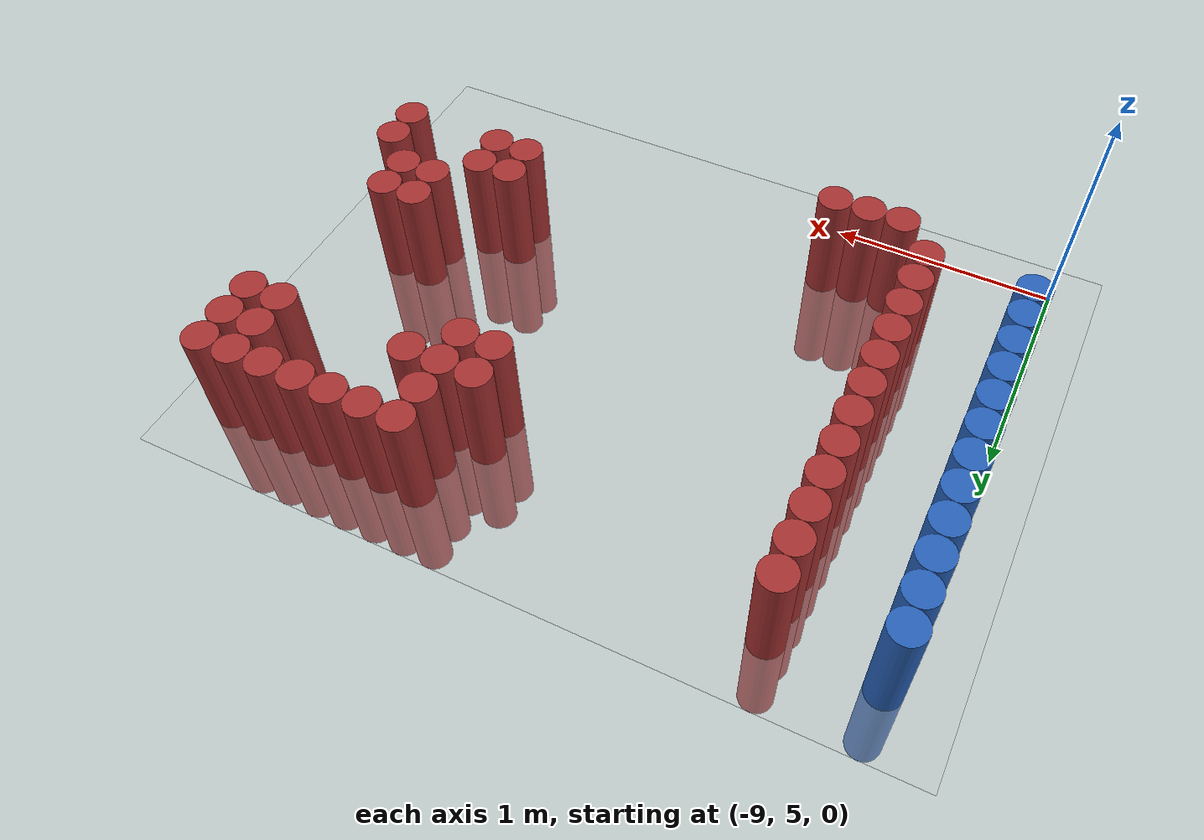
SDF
<sdf version="1.6">
 <world name="default">
  <model name="ground_plane">
   <static>1</static>
   <link name="link">
    <collision name="collision">
     <geometry><plane><normal>0 0 1</normal><size>100 100</size></plane></geometry>
     <surface><friction><ode><mu>100</mu><mu2>50</mu2></ode></friction></surface>
    </collision>
    <visual name="visual">
     <cast_shadows>0</cast_shadows>
     <geometry><plane><normal>0 0 1</normal><size>100 100</size></plane></geometry>
     <material>
      <script><uri>file://media/materials/scripts/gazebo.material</uri><name>Gazebo/Grey</name></script>
     </material>
    </visual>
   </link>
  </model>
  <model name="unit_cylinder_127">
   <static>1</static>
   <pose>-8.925000 5.475000 0.000000 0.000000 0.000000 0.000000</pose>
   <link name="link">
    <inertial>
     <mass>1</mass>
     <inertia><ixx>0.145833</ixx><ixy>0</ixy><ixz>0</ixz><iyy>0.145833</iyy><iyz>0</iyz><izz>0.125</izz></inertia>
    </inertial>
    <collision name="collision">
     <geometry><cylinder><radius>0.075000</radius><length>1</length></cylinder></geometry>
    </collision>
    <visual name="visual">
     <geometry><cylinder><radius>0.075000</radius><length>1</length></cylinder></geometry>
     <material>
      <ambient>0.152000 0.379000 0.720000 1</ambient>
      <diffuse>0.152000 0.379000 0.720000 1</diffuse>
     </material>
     <material>
      <script><name>Gazebo/Grey</name><uri>file://media/materials/scripts/gazebo.material</uri></script>
     </material>
    </visual>
   </link>
  </model>
  <model name="unit_cylinder_128">
   <static>1</static>
   <pose>-8.925000 5.625000 0.000000 0.000000 0.000000 0.000000</pose>
   <link name="link">
    <inertial>
     <mass>1</mass>
     <inertia><ixx>0.145833</ixx><ixy>0</ixy><ixz>0</ixz><iyy>0.145833</iyy><iyz>0</iyz><izz>0.125</izz></inertia>
    </inertial>
    <collision name="collision">
     <geometry><cylinder><radius>0.075000</radius><length>1</length></cylinder></geometry>
    </collision>
    <visual name="visual">
     <geometry><cylinder><radius>0.075000</radius><length>1</length></cylinder></geometry>
     <material>
      <ambient>0.152000 0.379000 0.720000 1</ambient>
      <diffuse>0.152000 0.379000 0.720000 1</diffuse>
     </material>
     <material>
      <script><name>Gazebo/Grey</name><uri>file://media/materials/scripts/gazebo.material</uri></script>
     </material>
    </visual>
   </link>
  </model>
  <model name="unit_cylinder_129">
   <static>1</static>
   <pose>-8.925000 5.775000 0.000000 0.000000 0.000000 0.000000</pose>
   <link name="link">
    <inertial>
     <mass>1</mass>
     <inertia><ixx>0.145833</ixx><ixy>0</ixy><ixz>0</ixz><iyy>0.145833</iyy><iyz>0</iyz><izz>0.125</izz></inertia>
    </inertial>
    <collision name="collision">
     <geometry><cylinder><radius>0.075000</radius><length>1</length></cylinder></geometry>
    </collision>
    <visual name="visual">
     <geometry><cylinder><radius>0.075000</radius><length>1</length></cylinder></geometry>
     <material>
      <ambient>0.152000 0.379000 0.720000 1</ambient>
      <diffuse>0.152000 0.379000 0.720000 1</diffuse>
     </material>
     <material>
      <script><name>Gazebo/Grey</name><uri>file://media/materials/scripts/gazebo.material</uri></script>
     </material>
    </visual>
   </link>
  </model>
  <model name="unit_cylinder_130">
   <static>1</static>
   <pose>-8.925000 5.925000 0.000000 0.000000 0.000000 0.000000</pose>
   <link name="link">
    <inertial>
     <mass>1</mass>
     <inertia><ixx>0.145833</ixx><ixy>0</ixy><ixz>0</ixz><iyy>0.145833</iyy><iyz>0</iyz><izz>0.125</izz></inertia>
    </inertial>
    <collision name="collision">
     <geometry><cylinder><radius>0.075000</radius><length>1</length></cylinder></geometry>
    </collision>
    <visual name="visual">
     <geometry><cylinder><radius>0.075000</radius><length>1</length></cylinder></geometry>
     <material>
      <ambient>0.152000 0.379000 0.720000 1</ambient>
      <diffuse>0.152000 0.379000 0.720000 1</diffuse>
     </material>
     <material>
      <script><name>Gazebo/Grey</name><uri>file://media/materials/scripts/gazebo.material</uri></script>
     </material>
    </visual>
   </link>
  </model>
  <model name="unit_cylinder_131">
   <static>1</static>
   <pose>-8.925000 6.075000 0.000000 0.000000 0.000000 0.000000</pose>
   <link name="link">
    <inertial>
     <mass>1</mass>
     <inertia><ixx>0.145833</ixx><ixy>0</ixy><ixz>0</ixz><iyy>0.145833</iyy><iyz>0</iyz><izz>0.125</izz></inertia>
    </inertial>
    <collision name="collision">
     <geometry><cylinder><radius>0.075000</radius><length>1</length></cylinder></geometry>
    </collision>
    <visual name="visual">
     <geometry><cylinder><radius>0.075000</radius><length>1</length></cylinder></geometry>
     <material>
      <ambient>0.152000 0.379000 0.720000 1</ambient>
      <diffuse>0.152000 0.379000 0.720000 1</diffuse>
     </material>
     <material>
      <script><name>Gazebo/Grey</name><uri>file://media/materials/scripts/gazebo.material</uri></script>
     </material>
    </visual>
   </link>
  </model>
  <model name="unit_cylinder_132">
   <static>1</static>
   <pose>-8.925000 6.225000 0.000000 0.000000 0.000000 0.000000</pose>
   <link name="link">
    <inertial>
     <mass>1</mass>
     <inertia><ixx>0.145833</ixx><ixy>0</ixy><ixz>0</ixz><iyy>0.145833</iyy><iyz>0</iyz><izz>0.125</izz></inertia>
    </inertial>
    <collision name="collision">
     <geometry><cylinder><radius>0.075000</radius><length>1</length></cylinder></geometry>
    </collision>
    <visual name="visual">
     <geometry><cylinder><radius>0.075000</radius><length>1</length></cylinder></geometry>
     <material>
      <ambient>0.152000 0.379000 0.720000 1</ambient>
      <diffuse>0.152000 0.379000 0.720000 1</diffuse>
     </material>
     <material>
      <script><name>Gazebo/Grey</name><uri>file://media/materials/scripts/gazebo.material</uri></script>
     </material>
    </visual>
   </link>
  </model>
  <model name="unit_cylinder_133">
   <static>1</static>
   <pose>-8.925000 6.375000 0.000000 0.000000 0.000000 0.000000</pose>
   <link name="link">
    <inertial>
     <mass>1</mass>
     <inertia><ixx>0.145833</ixx><ixy>0</ixy><ixz>0</ixz><iyy>0.145833</iyy><iyz>0</iyz><izz>0.125</izz></inertia>
    </inertial>
    <collision name="collision">
     <geometry><cylinder><radius>0.075000</radius><length>1</length></cylinder></geometry>
    </collision>
    <visual name="visual">
     <geometry><cylinder><radius>0.075000</radius><length>1</length></cylinder></geometry>
     <material>
      <ambient>0.152000 0.379000 0.720000 1</ambient>
      <diffuse>0.152000 0.379000 0.720000 1</diffuse>
     </material>
     <material>
      <script><name>Gazebo/Grey</name><uri>file://media/materials/scripts/gazebo.material</uri></script>
     </material>
    </visual>
   </link>
  </model>
  <model name="unit_cylinder_134">
   <static>1</static>
   <pose>-8.925000 6.525000 0.000000 0.000000 0.000000 0.000000</pose>
   <link name="link">
    <inertial>
     <mass>1</mass>
     <inertia><ixx>0.145833</ixx><ixy>0</ixy><ixz>0</ixz><iyy>0.145833</iyy><iyz>0</iyz><izz>0.125</izz></inertia>
    </inertial>
    <collision name="collision">
     <geometry><cylinder><radius>0.075000</radius><length>1</length></cylinder></geometry>
    </collision>
    <visual name="visual">
     <geometry><cylinder><radius>0.075000</radius><length>1</length></cylinder></geometry>
     <material>
      <ambient>0.152000 0.379000 0.720000 1</ambient>
      <diffuse>0.152000 0.379000 0.720000 1</diffuse>
     </material>
     <material>
      <script><name>Gazebo/Grey</name><uri>file://media/materials/scripts/gazebo.material</uri></script>
     </material>
    </visual>
   </link>
  </model>
  <model name="unit_cylinder_135">
   <static>1</static>
   <pose>-8.925000 6.675000 0.000000 0.000000 0.000000 0.000000</pose>
   <link name="link">
    <inertial>
     <mass>1</mass>
     <inertia><ixx>0.145833</ixx><ixy>0</ixy><ixz>0</ixz><iyy>0.145833</iyy><iyz>0</iyz><izz>0.125</izz></inertia>
    </inertial>
    <collision name="collision">
     <geometry><cylinder><radius>0.075000</radius><length>1</length></cylinder></geometry>
    </collision>
    <visual name="visual">
     <geometry><cylinder><radius>0.075000</radius><length>1</length></cylinder></geometry>
     <material>
      <ambient>0.152000 0.379000 0.720000 1</ambient>
      <diffuse>0.152000 0.379000 0.720000 1</diffuse>
     </material>
     <material>
      <script><name>Gazebo/Grey</name><uri>file://media/materials/scripts/gazebo.material</uri></script>
     </material>
    </visual>
   </link>
  </model>
  <model name="unit_cylinder_136">
   <static>1</static>
   <pose>-8.925000 6.825000 0.000000 0.000000 0.000000 0.000000</pose>
   <link name="link">
    <inertial>
     <mass>1</mass>
     <inertia><ixx>0.145833</ixx><ixy>0</ixy><ixz>0</ixz><iyy>0.145833</iyy><iyz>0</iyz><izz>0.125</izz></inertia>
    </inertial>
    <collision name="collision">
     <geometry><cylinder><radius>0.075000</radius><length>1</length></cylinder></geometry>
    </collision>
    <visual name="visual">
     <geometry><cylinder><radius>0.075000</radius><length>1</length></cylinder></geometry>
     <material>
      <ambient>0.152000 0.379000 0.720000 1</ambient>
      <diffuse>0.152000 0.379000 0.720000 1</diffuse>
     </material>
     <material>
      <script><name>Gazebo/Grey</name><uri>file://media/materials/scripts/gazebo.material</uri></script>
     </material>
    </visual>
   </link>
  </model>
  <model name="unit_cylinder_137">
   <static>1</static>
   <pose>-8.925000 6.975000 0.000000 0.000000 0.000000 0.000000</pose>
   <link name="link">
    <inertial>
     <mass>1</mass>
     <inertia><ixx>0.145833</ixx><ixy>0</ixy><ixz>0</ixz><iyy>0.145833</iyy><iyz>0</iyz><izz>0.125</izz></inertia>
    </inertial>
    <collision name="collision">
     <geometry><cylinder><radius>0.075000</radius><length>1</length></cylinder></geometry>
    </collision>
    <visual name="visual">
     <geometry><cylinder><radius>0.075000</radius><length>1</length></cylinder></geometry>
     <material>
      <ambient>0.152000 0.379000 0.720000 1</ambient>
      <diffuse>0.152000 0.379000 0.720000 1</diffuse>
     </material>
     <material>
      <script><name>Gazebo/Grey</name><uri>file://media/materials/scripts/gazebo.material</uri></script>
     </material>
    </visual>
   </link>
  </model>
  <model name="unit_cylinder_138">
   <static>1</static>
   <pose>-8.925000 7.125000 0.000000 0.000000 0.000000 0.000000</pose>
   <link name="link">
    <inertial>
     <mass>1</mass>
     <inertia><ixx>0.145833</ixx><ixy>0</ixy><ixz>0</ixz><iyy>0.145833</iyy><iyz>0</iyz><izz>0.125</izz></inertia>
    </inertial>
    <collision name="collision">
     <geometry><cylinder><radius>0.075000</radius><length>1</length></cylinder></geometry>
    </collision>
    <visual name="visual">
     <geometry><cylinder><radius>0.075000</radius><length>1</length></cylinder></geometry>
     <material>
      <ambient>0.152000 0.379000 0.720000 1</ambient>
      <diffuse>0.152000 0.379000 0.720000 1</diffuse>
     </material>
     <material>
      <script><name>Gazebo/Grey</name><uri>file://media/materials/scripts/gazebo.material</uri></script>
     </material>
    </visual>
   </link>
  </model>
  <model name="unit_cylinder_161">
   <static>1</static>
   <pose>-8.475000 5.475000 0.000000 0.000000 0.000000 0.000000</pose>
   <link name="link">
    <inertial>
     <mass>1</mass>
     <inertia><ixx>0.145833</ixx><ixy>0</ixy><ixz>0</ixz><iyy>0.145833</iyy><iyz>0</iyz><izz>0.125</izz></inertia>
    </inertial>
    <collision name="collision">
     <geometry><cylinder><radius>0.075000</radius><length>1</length></cylinder></geometry>
    </collision>
    <visual name="visual">
     <geometry><cylinder><radius>0.075000</radius><length>1</length></cylinder></geometry>
     <material>
      <ambient>0.648000 0.192000 0.192000 1</ambient>
      <diffuse>0.648000 0.192000 0.192000 1</diffuse>
     </material>
     <material>
      <script><name>Gazebo/Grey</name><uri>file://media/materials/scripts/gazebo.material</uri></script>
     </material>
    </visual>
   </link>
  </model>
  <model name="unit_cylinder_162">
   <static>1</static>
   <pose>-8.475000 5.625000 0.000000 0.000000 0.000000 0.000000</pose>
   <link name="link">
    <inertial>
     <mass>1</mass>
     <inertia><ixx>0.145833</ixx><ixy>0</ixy><ixz>0</ixz><iyy>0.145833</iyy><iyz>0</iyz><izz>0.125</izz></inertia>
    </inertial>
    <collision name="collision">
     <geometry><cylinder><radius>0.075000</radius><length>1</length></cylinder></geometry>
    </collision>
    <visual name="visual">
     <geometry><cylinder><radius>0.075000</radius><length>1</length></cylinder></geometry>
     <material>
      <ambient>0.648000 0.192000 0.192000 1</ambient>
      <diffuse>0.648000 0.192000 0.192000 1</diffuse>
     </material>
     <material>
      <script><name>Gazebo/Grey</name><uri>file://media/materials/scripts/gazebo.material</uri></script>
     </material>
    </visual>
   </link>
  </model>
  <model name="unit_cylinder_163">
   <static>1</static>
   <pose>-8.475000 5.775000 0.000000 0.000000 0.000000 0.000000</pose>
   <link name="link">
    <inertial>
     <mass>1</mass>
     <inertia><ixx>0.145833</ixx><ixy>0</ixy><ixz>0</ixz><iyy>0.145833</iyy><iyz>0</iyz><izz>0.125</izz></inertia>
    </inertial>
    <collision name="collision">
     <geometry><cylinder><radius>0.075000</radius><length>1</length></cylinder></geometry>
    </collision>
    <visual name="visual">
     <geometry><cylinder><radius>0.075000</radius><length>1</length></cylinder></geometry>
     <material>
      <ambient>0.648000 0.192000 0.192000 1</ambient>
      <diffuse>0.648000 0.192000 0.192000 1</diffuse>
     </material>
     <material>
      <script><name>Gazebo/Grey</name><uri>file://media/materials/scripts/gazebo.material</uri></script>
     </material>
    </visual>
   </link>
  </model>
  <model name="unit_cylinder_164">
   <static>1</static>
   <pose>-8.475000 5.925000 0.000000 0.000000 0.000000 0.000000</pose>
   <link name="link">
    <inertial>
     <mass>1</mass>
     <inertia><ixx>0.145833</ixx><ixy>0</ixy><ixz>0</ixz><iyy>0.145833</iyy><iyz>0</iyz><izz>0.125</izz></inertia>
    </inertial>
    <collision name="collision">
     <geometry><cylinder><radius>0.075000</radius><length>1</length></cylinder></geometry>
    </collision>
    <visual name="visual">
     <geometry><cylinder><radius>0.075000</radius><length>1</length></cylinder></geometry>
     <material>
      <ambient>0.648000 0.192000 0.192000 1</ambient>
      <diffuse>0.648000 0.192000 0.192000 1</diffuse>
     </material>
     <material>
      <script><name>Gazebo/Grey</name><uri>file://media/materials/scripts/gazebo.material</uri></script>
     </material>
    </visual>
   </link>
  </model>
  <model name="unit_cylinder_165">
   <static>1</static>
   <pose>-8.475000 6.075000 0.000000 0.000000 0.000000 0.000000</pose>
   <link name="link">
    <inertial>
     <mass>1</mass>
     <inertia><ixx>0.145833</ixx><ixy>0</ixy><ixz>0</ixz><iyy>0.145833</iyy><iyz>0</iyz><izz>0.125</izz></inertia>
    </inertial>
    <collision name="collision">
     <geometry><cylinder><radius>0.075000</radius><length>1</length></cylinder></geometry>
    </collision>
    <visual name="visual">
     <geometry><cylinder><radius>0.075000</radius><length>1</length></cylinder></geometry>
     <material>
      <ambient>0.648000 0.192000 0.192000 1</ambient>
      <diffuse>0.648000 0.192000 0.192000 1</diffuse>
     </material>
     <material>
      <script><name>Gazebo/Grey</name><uri>file://media/materials/scripts/gazebo.material</uri></script>
     </material>
    </visual>
   </link>
  </model>
  <model name="unit_cylinder_166">
   <static>1</static>
   <pose>-8.475000 6.225000 0.000000 0.000000 0.000000 0.000000</pose>
   <link name="link">
    <inertial>
     <mass>1</mass>
     <inertia><ixx>0.145833</ixx><ixy>0</ixy><ixz>0</ixz><iyy>0.145833</iyy><iyz>0</iyz><izz>0.125</izz></inertia>
    </inertial>
    <collision name="collision">
     <geometry><cylinder><radius>0.075000</radius><length>1</length></cylinder></geometry>
    </collision>
    <visual name="visual">
     <geometry><cylinder><radius>0.075000</radius><length>1</length></cylinder></geometry>
     <material>
      <ambient>0.648000 0.192000 0.192000 1</ambient>
      <diffuse>0.648000 0.192000 0.192000 1</diffuse>
     </material>
     <material>
      <script><name>Gazebo/Grey</name><uri>file://media/materials/scripts/gazebo.material</uri></script>
     </material>
    </visual>
   </link>
  </model>
  <model name="unit_cylinder_167">
   <static>1</static>
   <pose>-8.475000 6.375000 0.000000 0.000000 0.000000 0.000000</pose>
   <link name="link">
    <inertial>
     <mass>1</mass>
     <inertia><ixx>0.145833</ixx><ixy>0</ixy><ixz>0</ixz><iyy>0.145833</iyy><iyz>0</iyz><izz>0.125</izz></inertia>
    </inertial>
    <collision name="collision">
     <geometry><cylinder><radius>0.075000</radius><length>1</length></cylinder></geometry>
    </collision>
    <visual name="visual">
     <geometry><cylinder><radius>0.075000</radius><length>1</length></cylinder></geometry>
     <material>
      <ambient>0.648000 0.192000 0.192000 1</ambient>
      <diffuse>0.648000 0.192000 0.192000 1</diffuse>
     </material>
     <material>
      <script><name>Gazebo/Grey</name><uri>file://media/materials/scripts/gazebo.material</uri></script>
     </material>
    </visual>
   </link>
  </model>
  <model name="unit_cylinder_168">
   <static>1</static>
   <pose>-8.475000 6.525000 0.000000 0.000000 0.000000 0.000000</pose>
   <link name="link">
    <inertial>
     <mass>1</mass>
     <inertia><ixx>0.145833</ixx><ixy>0</ixy><ixz>0</ixz><iyy>0.145833</iyy><iyz>0</iyz><izz>0.125</izz></inertia>
    </inertial>
    <collision name="collision">
     <geometry><cylinder><radius>0.075000</radius><length>1</length></cylinder></geometry>
    </collision>
    <visual name="visual">
     <geometry><cylinder><radius>0.075000</radius><length>1</length></cylinder></geometry>
     <material>
      <ambient>0.648000 0.192000 0.192000 1</ambient>
      <diffuse>0.648000 0.192000 0.192000 1</diffuse>
     </material>
     <material>
      <script><name>Gazebo/Grey</name><uri>file://media/materials/scripts/gazebo.material</uri></script>
     </material>
    </visual>
   </link>
  </model>
  <model name="unit_cylinder_169">
   <static>1</static>
   <pose>-8.475000 6.675000 0.000000 0.000000 0.000000 0.000000</pose>
   <link name="link">
    <inertial>
     <mass>1</mass>
     <inertia><ixx>0.145833</ixx><ixy>0</ixy><ixz>0</ixz><iyy>0.145833</iyy><iyz>0</iyz><izz>0.125</izz></inertia>
    </inertial>
    <collision name="collision">
     <geometry><cylinder><radius>0.075000</radius><length>1</length></cylinder></geometry>
    </collision>
    <visual name="visual">
     <geometry><cylinder><radius>0.075000</radius><length>1</length></cylinder></geometry>
     <material>
      <ambient>0.648000 0.192000 0.192000 1</ambient>
      <diffuse>0.648000 0.192000 0.192000 1</diffuse>
     </material>
     <material>
      <script><name>Gazebo/Grey</name><uri>file://media/materials/scripts/gazebo.material</uri></script>
     </material>
    </visual>
   </link>
  </model>
  <model name="unit_cylinder_170">
   <static>1</static>
   <pose>-8.475000 6.825000 0.000000 0.000000 0.000000 0.000000</pose>
   <link name="link">
    <inertial>
     <mass>1</mass>
     <inertia><ixx>0.145833</ixx><ixy>0</ixy><ixz>0</ixz><iyy>0.145833</iyy><iyz>0</iyz><izz>0.125</izz></inertia>
    </inertial>
    <collision name="collision">
     <geometry><cylinder><radius>0.075000</radius><length>1</length></cylinder></geometry>
    </collision>
    <visual name="visual">
     <geometry><cylinder><radius>0.075000</radius><length>1</length></cylinder></geometry>
     <material>
      <ambient>0.648000 0.192000 0.192000 1</ambient>
      <diffuse>0.648000 0.192000 0.192000 1</diffuse>
     </material>
     <material>
      <script><name>Gazebo/Grey</name><uri>file://media/materials/scripts/gazebo.material</uri></script>
     </material>
    </visual>
   </link>
  </model>
  <model name="unit_cylinder_171">
   <static>1</static>
   <pose>-8.475000 6.975000 0.000000 0.000000 0.000000 0.000000</pose>
   <link name="link">
    <inertial>
     <mass>1</mass>
     <inertia><ixx>0.145833</ixx><ixy>0</ixy><ixz>0</ixz><iyy>0.145833</iyy><iyz>0</iyz><izz>0.125</izz></inertia>
    </inertial>
    <collision name="collision">
     <geometry><cylinder><radius>0.075000</radius><length>1</length></cylinder></geometry>
    </collision>
    <visual name="visual">
     <geometry><cylinder><radius>0.075000</radius><length>1</length></cylinder></geometry>
     <material>
      <ambient>0.648000 0.192000 0.192000 1</ambient>
      <diffuse>0.648000 0.192000 0.192000 1</diffuse>
     </material>
     <material>
      <script><name>Gazebo/Grey</name><uri>file://media/materials/scripts/gazebo.material</uri></script>
     </material>
    </visual>
   </link>
  </model>
  <model name="unit_cylinder_172">
   <static>1</static>
   <pose>-8.475000 7.125000 0.000000 0.000000 0.000000 0.000000</pose>
   <link name="link">
    <inertial>
     <mass>1</mass>
     <inertia><ixx>0.145833</ixx><ixy>0</ixy><ixz>0</ixz><iyy>0.145833</iyy><iyz>0</iyz><izz>0.125</izz></inertia>
    </inertial>
    <collision name="collision">
     <geometry><cylinder><radius>0.075000</radius><length>1</length></cylinder></geometry>
    </collision>
    <visual name="visual">
     <geometry><cylinder><radius>0.075000</radius><length>1</length></cylinder></geometry>
     <material>
      <ambient>0.648000 0.192000 0.192000 1</ambient>
      <diffuse>0.648000 0.192000 0.192000 1</diffuse>
     </material>
     <material>
      <script><name>Gazebo/Grey</name><uri>file://media/materials/scripts/gazebo.material</uri></script>
     </material>
    </visual>
   </link>
  </model>
  <model name="unit_cylinder_182">
   <static>1</static>
   <pose>-8.325000 5.325000 0.000000 0.000000 0.000000 0.000000</pose>
   <link name="link">
    <inertial>
     <mass>1</mass>
     <inertia><ixx>0.145833</ixx><ixy>0</ixy><ixz>0</ixz><iyy>0.145833</iyy><iyz>0</iyz><izz>0.125</izz></inertia>
    </inertial>
    <collision name="collision">
     <geometry><cylinder><radius>0.075000</radius><length>1</length></cylinder></geometry>
    </collision>
    <visual name="visual">
     <geometry><cylinder><radius>0.075000</radius><length>1</length></cylinder></geometry>
     <material>
      <ambient>0.648000 0.192000 0.192000 1</ambient>
      <diffuse>0.648000 0.192000 0.192000 1</diffuse>
     </material>
     <material>
      <script><name>Gazebo/Grey</name><uri>file://media/materials/scripts/gazebo.material</uri></script>
     </material>
    </visual>
   </link>
  </model>
  <model name="unit_cylinder_188">
   <static>1</static>
   <pose>-8.175000 5.325000 0.000000 0.000000 0.000000 0.000000</pose>
   <link name="link">
    <inertial>
     <mass>1</mass>
     <inertia><ixx>0.145833</ixx><ixy>0</ixy><ixz>0</ixz><iyy>0.145833</iyy><iyz>0</iyz><izz>0.125</izz></inertia>
    </inertial>
    <collision name="collision">
     <geometry><cylinder><radius>0.075000</radius><length>1</length></cylinder></geometry>
    </collision>
    <visual name="visual">
     <geometry><cylinder><radius>0.075000</radius><length>1</length></cylinder></geometry>
     <material>
      <ambient>0.648000 0.192000 0.192000 1</ambient>
      <diffuse>0.648000 0.192000 0.192000 1</diffuse>
     </material>
     <material>
      <script><name>Gazebo/Grey</name><uri>file://media/materials/scripts/gazebo.material</uri></script>
     </material>
    </visual>
   </link>
  </model>
  <model name="unit_cylinder_193">
   <static>1</static>
   <pose>-8.025000 5.325000 0.000000 0.000000 0.000000 0.000000</pose>
   <link name="link">
    <inertial>
     <mass>1</mass>
     <inertia><ixx>0.145833</ixx><ixy>0</ixy><ixz>0</ixz><iyy>0.145833</iyy><iyz>0</iyz><izz>0.125</izz></inertia>
    </inertial>
    <collision name="collision">
     <geometry><cylinder><radius>0.075000</radius><length>1</length></cylinder></geometry>
    </collision>
    <visual name="visual">
     <geometry><cylinder><radius>0.075000</radius><length>1</length></cylinder></geometry>
     <material>
      <ambient>0.648000 0.192000 0.192000 1</ambient>
      <diffuse>0.648000 0.192000 0.192000 1</diffuse>
     </material>
     <material>
      <script><name>Gazebo/Grey</name><uri>file://media/materials/scripts/gazebo.material</uri></script>
     </material>
    </visual>
   </link>
  </model>
  <model name="unit_cylinder_207">
   <static>1</static>
   <pose>-7.125000 6.675000 0.000000 0.000000 0.000000 0.000000</pose>
   <link name="link">
    <inertial>
     <mass>1</mass>
     <inertia><ixx>0.145833</ixx><ixy>0</ixy><ixz>0</ixz><iyy>0.145833</iyy><iyz>0</iyz><izz>0.125</izz></inertia>
    </inertial>
    <collision name="collision">
     <geometry><cylinder><radius>0.075000</radius><length>1</length></cylinder></geometry>
    </collision>
    <visual name="visual">
     <geometry><cylinder><radius>0.075000</radius><length>1</length></cylinder></geometry>
     <material>
      <ambient>0.648000 0.192000 0.192000 1</ambient>
      <diffuse>0.648000 0.192000 0.192000 1</diffuse>
     </material>
     <material>
      <script><name>Gazebo/Grey</name><uri>file://media/materials/scripts/gazebo.material</uri></script>
     </material>
    </visual>
   </link>
  </model>
  <model name="unit_cylinder_208">
   <static>1</static>
   <pose>-7.125000 6.825000 0.000000 0.000000 0.000000 0.000000</pose>
   <link name="link">
    <inertial>
     <mass>1</mass>
     <inertia><ixx>0.145833</ixx><ixy>0</ixy><ixz>0</ixz><iyy>0.145833</iyy><iyz>0</iyz><izz>0.125</izz></inertia>
    </inertial>
    <collision name="collision">
     <geometry><cylinder><radius>0.075000</radius><length>1</length></cylinder></geometry>
    </collision>
    <visual name="visual">
     <geometry><cylinder><radius>0.075000</radius><length>1</length></cylinder></geometry>
     <material>
      <ambient>0.648000 0.192000 0.192000 1</ambient>
      <diffuse>0.648000 0.192000 0.192000 1</diffuse>
     </material>
     <material>
      <script><name>Gazebo/Grey</name><uri>file://media/materials/scripts/gazebo.material</uri></script>
     </material>
    </visual>
   </link>
  </model>
  <model name="unit_cylinder_209">
   <static>1</static>
   <pose>-6.975000 6.675000 0.000000 0.000000 0.000000 0.000000</pose>
   <link name="link">
    <inertial>
     <mass>1</mass>
     <inertia><ixx>0.145833</ixx><ixy>0</ixy><ixz>0</ixz><iyy>0.145833</iyy><iyz>0</iyz><izz>0.125</izz></inertia>
    </inertial>
    <collision name="collision">
     <geometry><cylinder><radius>0.075000</radius><length>1</length></cylinder></geometry>
    </collision>
    <visual name="visual">
     <geometry><cylinder><radius>0.075000</radius><length>1</length></cylinder></geometry>
     <material>
      <ambient>0.648000 0.192000 0.192000 1</ambient>
      <diffuse>0.648000 0.192000 0.192000 1</diffuse>
     </material>
     <material>
      <script><name>Gazebo/Grey</name><uri>file://media/materials/scripts/gazebo.material</uri></script>
     </material>
    </visual>
   </link>
  </model>
  <model name="unit_cylinder_210">
   <static>1</static>
   <pose>-6.975000 6.825000 0.000000 0.000000 0.000000 0.000000</pose>
   <link name="link">
    <inertial>
     <mass>1</mass>
     <inertia><ixx>0.145833</ixx><ixy>0</ixy><ixz>0</ixz><iyy>0.145833</iyy><iyz>0</iyz><izz>0.125</izz></inertia>
    </inertial>
    <collision name="collision">
     <geometry><cylinder><radius>0.075000</radius><length>1</length></cylinder></geometry>
    </collision>
    <visual name="visual">
     <geometry><cylinder><radius>0.075000</radius><length>1</length></cylinder></geometry>
     <material>
      <ambient>0.648000 0.192000 0.192000 1</ambient>
      <diffuse>0.648000 0.192000 0.192000 1</diffuse>
     </material>
     <material>
      <script><name>Gazebo/Grey</name><uri>file://media/materials/scripts/gazebo.material</uri></script>
     </material>
    </visual>
   </link>
  </model>
  <model name="unit_cylinder_211">
   <static>1</static>
   <pose>-6.975000 6.975000 0.000000 0.000000 0.000000 0.000000</pose>
   <link name="link">
    <inertial>
     <mass>1</mass>
     <inertia><ixx>0.145833</ixx><ixy>0</ixy><ixz>0</ixz><iyy>0.145833</iyy><iyz>0</iyz><izz>0.125</izz></inertia>
    </inertial>
    <collision name="collision">
     <geometry><cylinder><radius>0.075000</radius><length>1</length></cylinder></geometry>
    </collision>
    <visual name="visual">
     <geometry><cylinder><radius>0.075000</radius><length>1</length></cylinder></geometry>
     <material>
      <ambient>0.648000 0.192000 0.192000 1</ambient>
      <diffuse>0.648000 0.192000 0.192000 1</diffuse>
     </material>
     <material>
      <script><name>Gazebo/Grey</name><uri>file://media/materials/scripts/gazebo.material</uri></script>
     </material>
    </visual>
   </link>
  </model>
  <model name="unit_cylinder_212">
   <static>1</static>
   <pose>-6.975000 7.125000 0.000000 0.000000 0.000000 0.000000</pose>
   <link name="link">
    <inertial>
     <mass>1</mass>
     <inertia><ixx>0.145833</ixx><ixy>0</ixy><ixz>0</ixz><iyy>0.145833</iyy><iyz>0</iyz><izz>0.125</izz></inertia>
    </inertial>
    <collision name="collision">
     <geometry><cylinder><radius>0.075000</radius><length>1</length></cylinder></geometry>
    </collision>
    <visual name="visual">
     <geometry><cylinder><radius>0.075000</radius><length>1</length></cylinder></geometry>
     <material>
      <ambient>0.648000 0.192000 0.192000 1</ambient>
      <diffuse>0.648000 0.192000 0.192000 1</diffuse>
     </material>
     <material>
      <script><name>Gazebo/Grey</name><uri>file://media/materials/scripts/gazebo.material</uri></script>
     </material>
    </visual>
   </link>
  </model>
  <model name="unit_cylinder_213">
   <static>1</static>
   <pose>-6.825000 6.825000 0.000000 0.000000 0.000000 0.000000</pose>
   <link name="link">
    <inertial>
     <mass>1</mass>
     <inertia><ixx>0.145833</ixx><ixy>0</ixy><ixz>0</ixz><iyy>0.145833</iyy><iyz>0</iyz><izz>0.125</izz></inertia>
    </inertial>
    <collision name="collision">
     <geometry><cylinder><radius>0.075000</radius><length>1</length></cylinder></geometry>
    </collision>
    <visual name="visual">
     <geometry><cylinder><radius>0.075000</radius><length>1</length></cylinder></geometry>
     <material>
      <ambient>0.648000 0.192000 0.192000 1</ambient>
      <diffuse>0.648000 0.192000 0.192000 1</diffuse>
     </material>
     <material>
      <script><name>Gazebo/Grey</name><uri>file://media/materials/scripts/gazebo.material</uri></script>
     </material>
    </visual>
   </link>
  </model>
  <model name="unit_cylinder_214">
   <static>1</static>
   <pose>-6.825000 7.125000 0.000000 0.000000 0.000000 0.000000</pose>
   <link name="link">
    <inertial>
     <mass>1</mass>
     <inertia><ixx>0.145833</ixx><ixy>0</ixy><ixz>0</ixz><iyy>0.145833</iyy><iyz>0</iyz><izz>0.125</izz></inertia>
    </inertial>
    <collision name="collision">
     <geometry><cylinder><radius>0.075000</radius><length>1</length></cylinder></geometry>
    </collision>
    <visual name="visual">
     <geometry><cylinder><radius>0.075000</radius><length>1</length></cylinder></geometry>
     <material>
      <ambient>0.648000 0.192000 0.192000 1</ambient>
      <diffuse>0.648000 0.192000 0.192000 1</diffuse>
     </material>
     <material>
      <script><name>Gazebo/Grey</name><uri>file://media/materials/scripts/gazebo.material</uri></script>
     </material>
    </visual>
   </link>
  </model>
  <model name="unit_cylinder_216">
   <static>1</static>
   <pose>-6.675000 5.625000 0.000000 0.000000 0.000000 0.000000</pose>
   <link name="link">
    <inertial>
     <mass>1</mass>
     <inertia><ixx>0.145833</ixx><ixy>0</ixy><ixz>0</ixz><iyy>0.145833</iyy><iyz>0</iyz><izz>0.125</izz></inertia>
    </inertial>
    <collision name="collision">
     <geometry><cylinder><radius>0.075000</radius><length>1</length></cylinder></geometry>
    </collision>
    <visual name="visual">
     <geometry><cylinder><radius>0.075000</radius><length>1</length></cylinder></geometry>
     <material>
      <ambient>0.648000 0.192000 0.192000 1</ambient>
      <diffuse>0.648000 0.192000 0.192000 1</diffuse>
     </material>
     <material>
      <script><name>Gazebo/Grey</name><uri>file://media/materials/scripts/gazebo.material</uri></script>
     </material>
    </visual>
   </link>
  </model>
  <model name="unit_cylinder_217">
   <static>1</static>
   <pose>-6.675000 5.775000 0.000000 0.000000 0.000000 0.000000</pose>
   <link name="link">
    <inertial>
     <mass>1</mass>
     <inertia><ixx>0.145833</ixx><ixy>0</ixy><ixz>0</ixz><iyy>0.145833</iyy><iyz>0</iyz><izz>0.125</izz></inertia>
    </inertial>
    <collision name="collision">
     <geometry><cylinder><radius>0.075000</radius><length>1</length></cylinder></geometry>
    </collision>
    <visual name="visual">
     <geometry><cylinder><radius>0.075000</radius><length>1</length></cylinder></geometry>
     <material>
      <ambient>0.648000 0.192000 0.192000 1</ambient>
      <diffuse>0.648000 0.192000 0.192000 1</diffuse>
     </material>
     <material>
      <script><name>Gazebo/Grey</name><uri>file://media/materials/scripts/gazebo.material</uri></script>
     </material>
    </visual>
   </link>
  </model>
  <model name="unit_cylinder_218">
   <static>1</static>
   <pose>-6.675000 7.125000 0.000000 0.000000 0.000000 0.000000</pose>
   <link name="link">
    <inertial>
     <mass>1</mass>
     <inertia><ixx>0.145833</ixx><ixy>0</ixy><ixz>0</ixz><iyy>0.145833</iyy><iyz>0</iyz><izz>0.125</izz></inertia>
    </inertial>
    <collision name="collision">
     <geometry><cylinder><radius>0.075000</radius><length>1</length></cylinder></geometry>
    </collision>
    <visual name="visual">
     <geometry><cylinder><radius>0.075000</radius><length>1</length></cylinder></geometry>
     <material>
      <ambient>0.648000 0.192000 0.192000 1</ambient>
      <diffuse>0.648000 0.192000 0.192000 1</diffuse>
     </material>
     <material>
      <script><name>Gazebo/Grey</name><uri>file://media/materials/scripts/gazebo.material</uri></script>
     </material>
    </visual>
   </link>
  </model>
  <model name="unit_cylinder_220">
   <static>1</static>
   <pose>-6.525000 5.625000 0.000000 0.000000 0.000000 0.000000</pose>
   <link name="link">
    <inertial>
     <mass>1</mass>
     <inertia><ixx>0.145833</ixx><ixy>0</ixy><ixz>0</ixz><iyy>0.145833</iyy><iyz>0</iyz><izz>0.125</izz></inertia>
    </inertial>
    <collision name="collision">
     <geometry><cylinder><radius>0.075000</radius><length>1</length></cylinder></geometry>
    </collision>
    <visual name="visual">
     <geometry><cylinder><radius>0.075000</radius><length>1</length></cylinder></geometry>
     <material>
      <ambient>0.648000 0.192000 0.192000 1</ambient>
      <diffuse>0.648000 0.192000 0.192000 1</diffuse>
     </material>
     <material>
      <script><name>Gazebo/Grey</name><uri>file://media/materials/scripts/gazebo.material</uri></script>
     </material>
    </visual>
   </link>
  </model>
  <model name="unit_cylinder_221">
   <static>1</static>
   <pose>-6.525000 5.775000 0.000000 0.000000 0.000000 0.000000</pose>
   <link name="link">
    <inertial>
     <mass>1</mass>
     <inertia><ixx>0.145833</ixx><ixy>0</ixy><ixz>0</ixz><iyy>0.145833</iyy><iyz>0</iyz><izz>0.125</izz></inertia>
    </inertial>
    <collision name="collision">
     <geometry><cylinder><radius>0.075000</radius><length>1</length></cylinder></geometry>
    </collision>
    <visual name="visual">
     <geometry><cylinder><radius>0.075000</radius><length>1</length></cylinder></geometry>
     <material>
      <ambient>0.648000 0.192000 0.192000 1</ambient>
      <diffuse>0.648000 0.192000 0.192000 1</diffuse>
     </material>
     <material>
      <script><name>Gazebo/Grey</name><uri>file://media/materials/scripts/gazebo.material</uri></script>
     </material>
    </visual>
   </link>
  </model>
  <model name="unit_cylinder_222">
   <static>1</static>
   <pose>-6.525000 7.125000 0.000000 0.000000 0.000000 0.000000</pose>
   <link name="link">
    <inertial>
     <mass>1</mass>
     <inertia><ixx>0.145833</ixx><ixy>0</ixy><ixz>0</ixz><iyy>0.145833</iyy><iyz>0</iyz><izz>0.125</izz></inertia>
    </inertial>
    <collision name="collision">
     <geometry><cylinder><radius>0.075000</radius><length>1</length></cylinder></geometry>
    </collision>
    <visual name="visual">
     <geometry><cylinder><radius>0.075000</radius><length>1</length></cylinder></geometry>
     <material>
      <ambient>0.648000 0.192000 0.192000 1</ambient>
      <diffuse>0.648000 0.192000 0.192000 1</diffuse>
     </material>
     <material>
      <script><name>Gazebo/Grey</name><uri>file://media/materials/scripts/gazebo.material</uri></script>
     </material>
    </visual>
   </link>
  </model>
  <model name="unit_cylinder_223">
   <static>1</static>
   <pose>-6.375000 5.925000 0.000000 0.000000 0.000000 0.000000</pose>
   <link name="link">
    <inertial>
     <mass>1</mass>
     <inertia><ixx>0.145833</ixx><ixy>0</ixy><ixz>0</ixz><iyy>0.145833</iyy><iyz>0</iyz><izz>0.125</izz></inertia>
    </inertial>
    <collision name="collision">
     <geometry><cylinder><radius>0.075000</radius><length>1</length></cylinder></geometry>
    </collision>
    <visual name="visual">
     <geometry><cylinder><radius>0.075000</radius><length>1</length></cylinder></geometry>
     <material>
      <ambient>0.648000 0.192000 0.192000 1</ambient>
      <diffuse>0.648000 0.192000 0.192000 1</diffuse>
     </material>
     <material>
      <script><name>Gazebo/Grey</name><uri>file://media/materials/scripts/gazebo.material</uri></script>
     </material>
    </visual>
   </link>
  </model>
  <model name="unit_cylinder_224">
   <static>1</static>
   <pose>-6.375000 6.075000 0.000000 0.000000 0.000000 0.000000</pose>
   <link name="link">
    <inertial>
     <mass>1</mass>
     <inertia><ixx>0.145833</ixx><ixy>0</ixy><ixz>0</ixz><iyy>0.145833</iyy><iyz>0</iyz><izz>0.125</izz></inertia>
    </inertial>
    <collision name="collision">
     <geometry><cylinder><radius>0.075000</radius><length>1</length></cylinder></geometry>
    </collision>
    <visual name="visual">
     <geometry><cylinder><radius>0.075000</radius><length>1</length></cylinder></geometry>
     <material>
      <ambient>0.648000 0.192000 0.192000 1</ambient>
      <diffuse>0.648000 0.192000 0.192000 1</diffuse>
     </material>
     <material>
      <script><name>Gazebo/Grey</name><uri>file://media/materials/scripts/gazebo.material</uri></script>
     </material>
    </visual>
   </link>
  </model>
  <model name="unit_cylinder_225">
   <static>1</static>
   <pose>-6.375000 7.125000 0.000000 0.000000 0.000000 0.000000</pose>
   <link name="link">
    <inertial>
     <mass>1</mass>
     <inertia><ixx>0.145833</ixx><ixy>0</ixy><ixz>0</ixz><iyy>0.145833</iyy><iyz>0</iyz><izz>0.125</izz></inertia>
    </inertial>
    <collision name="collision">
     <geometry><cylinder><radius>0.075000</radius><length>1</length></cylinder></geometry>
    </collision>
    <visual name="visual">
     <geometry><cylinder><radius>0.075000</radius><length>1</length></cylinder></geometry>
     <material>
      <ambient>0.648000 0.192000 0.192000 1</ambient>
      <diffuse>0.648000 0.192000 0.192000 1</diffuse>
     </material>
     <material>
      <script><name>Gazebo/Grey</name><uri>file://media/materials/scripts/gazebo.material</uri></script>
     </material>
    </visual>
   </link>
  </model>
  <model name="unit_cylinder_226">
   <static>1</static>
   <pose>-6.225000 5.925000 0.000000 0.000000 0.000000 0.000000</pose>
   <link name="link">
    <inertial>
     <mass>1</mass>
     <inertia><ixx>0.145833</ixx><ixy>0</ixy><ixz>0</ixz><iyy>0.145833</iyy><iyz>0</iyz><izz>0.125</izz></inertia>
    </inertial>
    <collision name="collision">
     <geometry><cylinder><radius>0.075000</radius><length>1</length></cylinder></geometry>
    </collision>
    <visual name="visual">
     <geometry><cylinder><radius>0.075000</radius><length>1</length></cylinder></geometry>
     <material>
      <ambient>0.648000 0.192000 0.192000 1</ambient>
      <diffuse>0.648000 0.192000 0.192000 1</diffuse>
     </material>
     <material>
      <script><name>Gazebo/Grey</name><uri>file://media/materials/scripts/gazebo.material</uri></script>
     </material>
    </visual>
   </link>
  </model>
  <model name="unit_cylinder_227">
   <static>1</static>
   <pose>-6.225000 6.075000 0.000000 0.000000 0.000000 0.000000</pose>
   <link name="link">
    <inertial>
     <mass>1</mass>
     <inertia><ixx>0.145833</ixx><ixy>0</ixy><ixz>0</ixz><iyy>0.145833</iyy><iyz>0</iyz><izz>0.125</izz></inertia>
    </inertial>
    <collision name="collision">
     <geometry><cylinder><radius>0.075000</radius><length>1</length></cylinder></geometry>
    </collision>
    <visual name="visual">
     <geometry><cylinder><radius>0.075000</radius><length>1</length></cylinder></geometry>
     <material>
      <ambient>0.648000 0.192000 0.192000 1</ambient>
      <diffuse>0.648000 0.192000 0.192000 1</diffuse>
     </material>
     <material>
      <script><name>Gazebo/Grey</name><uri>file://media/materials/scripts/gazebo.material</uri></script>
     </material>
    </visual>
   </link>
  </model>
  <model name="unit_cylinder_228">
   <static>1</static>
   <pose>-6.225000 6.825000 0.000000 0.000000 0.000000 0.000000</pose>
   <link name="link">
    <inertial>
     <mass>1</mass>
     <inertia><ixx>0.145833</ixx><ixy>0</ixy><ixz>0</ixz><iyy>0.145833</iyy><iyz>0</iyz><izz>0.125</izz></inertia>
    </inertial>
    <collision name="collision">
     <geometry><cylinder><radius>0.075000</radius><length>1</length></cylinder></geometry>
    </collision>
    <visual name="visual">
     <geometry><cylinder><radius>0.075000</radius><length>1</length></cylinder></geometry>
     <material>
      <ambient>0.648000 0.192000 0.192000 1</ambient>
      <diffuse>0.648000 0.192000 0.192000 1</diffuse>
     </material>
     <material>
      <script><name>Gazebo/Grey</name><uri>file://media/materials/scripts/gazebo.material</uri></script>
     </material>
    </visual>
   </link>
  </model>
  <model name="unit_cylinder_229">
   <static>1</static>
   <pose>-6.225000 6.975000 0.000000 0.000000 0.000000 0.000000</pose>
   <link name="link">
    <inertial>
     <mass>1</mass>
     <inertia><ixx>0.145833</ixx><ixy>0</ixy><ixz>0</ixz><iyy>0.145833</iyy><iyz>0</iyz><izz>0.125</izz></inertia>
    </inertial>
    <collision name="collision">
     <geometry><cylinder><radius>0.075000</radius><length>1</length></cylinder></geometry>
    </collision>
    <visual name="visual">
     <geometry><cylinder><radius>0.075000</radius><length>1</length></cylinder></geometry>
     <material>
      <ambient>0.648000 0.192000 0.192000 1</ambient>
      <diffuse>0.648000 0.192000 0.192000 1</diffuse>
     </material>
     <material>
      <script><name>Gazebo/Grey</name><uri>file://media/materials/scripts/gazebo.material</uri></script>
     </material>
    </visual>
   </link>
  </model>
  <model name="unit_cylinder_230">
   <static>1</static>
   <pose>-6.225000 7.125000 0.000000 0.000000 0.000000 0.000000</pose>
   <link name="link">
    <inertial>
     <mass>1</mass>
     <inertia><ixx>0.145833</ixx><ixy>0</ixy><ixz>0</ixz><iyy>0.145833</iyy><iyz>0</iyz><izz>0.125</izz></inertia>
    </inertial>
    <collision name="collision">
     <geometry><cylinder><radius>0.075000</radius><length>1</length></cylinder></geometry>
    </collision>
    <visual name="visual">
     <geometry><cylinder><radius>0.075000</radius><length>1</length></cylinder></geometry>
     <material>
      <ambient>0.648000 0.192000 0.192000 1</ambient>
      <diffuse>0.648000 0.192000 0.192000 1</diffuse>
     </material>
     <material>
      <script><name>Gazebo/Grey</name><uri>file://media/materials/scripts/gazebo.material</uri></script>
     </material>
    </visual>
   </link>
  </model>
  <model name="unit_cylinder_233">
   <static>1</static>
   <pose>-6.075000 5.625000 0.000000 0.000000 0.000000 0.000000</pose>
   <link name="link">
    <inertial>
     <mass>1</mass>
     <inertia><ixx>0.145833</ixx><ixy>0</ixy><ixz>0</ixz><iyy>0.145833</iyy><iyz>0</iyz><izz>0.125</izz></inertia>
    </inertial>
    <collision name="collision">
     <geometry><cylinder><radius>0.075000</radius><length>1</length></cylinder></geometry>
    </collision>
    <visual name="visual">
     <geometry><cylinder><radius>0.075000</radius><length>1</length></cylinder></geometry>
     <material>
      <ambient>0.648000 0.192000 0.192000 1</ambient>
      <diffuse>0.648000 0.192000 0.192000 1</diffuse>
     </material>
     <material>
      <script><name>Gazebo/Grey</name><uri>file://media/materials/scripts/gazebo.material</uri></script>
     </material>
    </visual>
   </link>
  </model>
  <model name="unit_cylinder_234">
   <static>1</static>
   <pose>-6.075000 5.775000 0.000000 0.000000 0.000000 0.000000</pose>
   <link name="link">
    <inertial>
     <mass>1</mass>
     <inertia><ixx>0.145833</ixx><ixy>0</ixy><ixz>0</ixz><iyy>0.145833</iyy><iyz>0</iyz><izz>0.125</izz></inertia>
    </inertial>
    <collision name="collision">
     <geometry><cylinder><radius>0.075000</radius><length>1</length></cylinder></geometry>
    </collision>
    <visual name="visual">
     <geometry><cylinder><radius>0.075000</radius><length>1</length></cylinder></geometry>
     <material>
      <ambient>0.648000 0.192000 0.192000 1</ambient>
      <diffuse>0.648000 0.192000 0.192000 1</diffuse>
     </material>
     <material>
      <script><name>Gazebo/Grey</name><uri>file://media/materials/scripts/gazebo.material</uri></script>
     </material>
    </visual>
   </link>
  </model>
  <model name="unit_cylinder_235">
   <static>1</static>
   <pose>-6.075000 6.825000 0.000000 0.000000 0.000000 0.000000</pose>
   <link name="link">
    <inertial>
     <mass>1</mass>
     <inertia><ixx>0.145833</ixx><ixy>0</ixy><ixz>0</ixz><iyy>0.145833</iyy><iyz>0</iyz><izz>0.125</izz></inertia>
    </inertial>
    <collision name="collision">
     <geometry><cylinder><radius>0.075000</radius><length>1</length></cylinder></geometry>
    </collision>
    <visual name="visual">
     <geometry><cylinder><radius>0.075000</radius><length>1</length></cylinder></geometry>
     <material>
      <ambient>0.648000 0.192000 0.192000 1</ambient>
      <diffuse>0.648000 0.192000 0.192000 1</diffuse>
     </material>
     <material>
      <script><name>Gazebo/Grey</name><uri>file://media/materials/scripts/gazebo.material</uri></script>
     </material>
    </visual>
   </link>
  </model>
  <model name="unit_cylinder_236">
   <static>1</static>
   <pose>-6.075000 6.975000 0.000000 0.000000 0.000000 0.000000</pose>
   <link name="link">
    <inertial>
     <mass>1</mass>
     <inertia><ixx>0.145833</ixx><ixy>0</ixy><ixz>0</ixz><iyy>0.145833</iyy><iyz>0</iyz><izz>0.125</izz></inertia>
    </inertial>
    <collision name="collision">
     <geometry><cylinder><radius>0.075000</radius><length>1</length></cylinder></geometry>
    </collision>
    <visual name="visual">
     <geometry><cylinder><radius>0.075000</radius><length>1</length></cylinder></geometry>
     <material>
      <ambient>0.648000 0.192000 0.192000 1</ambient>
      <diffuse>0.648000 0.192000 0.192000 1</diffuse>
     </material>
     <material>
      <script><name>Gazebo/Grey</name><uri>file://media/materials/scripts/gazebo.material</uri></script>
     </material>
    </visual>
   </link>
  </model>
  <model name="unit_cylinder_237">
   <static>1</static>
   <pose>-6.075000 7.125000 0.000000 0.000000 0.000000 0.000000</pose>
   <link name="link">
    <inertial>
     <mass>1</mass>
     <inertia><ixx>0.145833</ixx><ixy>0</ixy><ixz>0</ixz><iyy>0.145833</iyy><iyz>0</iyz><izz>0.125</izz></inertia>
    </inertial>
    <collision name="collision">
     <geometry><cylinder><radius>0.075000</radius><length>1</length></cylinder></geometry>
    </collision>
    <visual name="visual">
     <geometry><cylinder><radius>0.075000</radius><length>1</length></cylinder></geometry>
     <material>
      <ambient>0.648000 0.192000 0.192000 1</ambient>
      <diffuse>0.648000 0.192000 0.192000 1</diffuse>
     </material>
     <material>
      <script><name>Gazebo/Grey</name><uri>file://media/materials/scripts/gazebo.material</uri></script>
     </material>
    </visual>
   </link>
  </model>
 </world>
</sdf>
